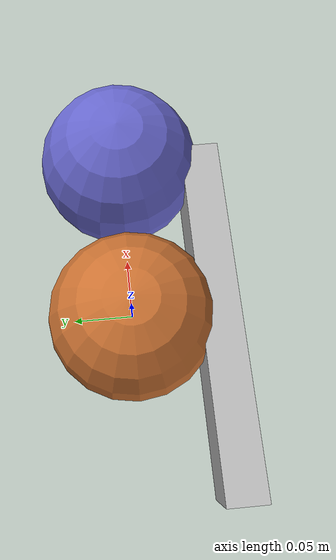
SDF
<?xml version='1.0'?>
<sdf version='1.6'>
  <model name='bubble_gripper'>
    <!-- Pose X_WG of the gripper model frame G in the world frame W. -->
    <pose>0.0555 0 0.0505 0 0 0.</pose> <!-- set the last to 1.57 to match simple gripper -->

    <joint name='weld_base' type='fixed'>
      <parent>world</parent>
      <child>y_translate_link</child>
      <pose>0 0 0 0 0 0</pose>
    </joint>

    <link name='y_translate_link'>
      <pose frame=''>0 0 0 0 -0 0</pose>
      <inertial>
        <mass>0.000001</mass>
        <inertia>
          <ixx>0.000001</ixx>
          <ixy>0</ixy>
          <ixz>0</ixz>
          <iyy>0.000001</iyy>
          <iyz>0</iyz>
          <izz>0.000001</izz>
        </inertia>
        <pose frame=''>0 0 0 0 -0 0</pose>
      </inertial>
    </link>

    <joint name='z_translate_joint' type='prismatic'>
      <parent>y_translate_link</parent>
      <child>body</child>
      <pose frame=''>0 0 0 0 -0 0</pose>
      <axis>
        <xyz>0 0 1</xyz>
        <use_parent_model_frame>1</use_parent_model_frame>
        <!-- Drake attaches an actuator to all joints with a non-zero effort
             limit. We do want an actuator for this joint. -->
        <limit>
          <effort>500</effort>
        </limit>
      </axis>
    </joint>

    <link name='body'>
      <pose frame=''>-0.07 -0.065 0 0 -0 0</pose>
      <inertial>
        <mass>0.001</mass>
        <inertia>
          <ixx>0.00001</ixx>
          <ixy>0</ixy>
          <ixz>0</ixz>
          <iyy>0.00001</iyy>
          <iyz>0</iyz>
          <izz>0.00001</izz>
        </inertia>
        <pose frame=''>0 0 0 0 -0 0</pose>
      </inertial>
      <visual name='visual'>
        <pose frame=''>0 0 0 0 -0 0</pose>
        <geometry>
          <box>
            <size>0.27 0.03 0.049521</size>
          </box>
        </geometry>
      </visual>
    </link>

    <link name='left_bubble'>
      <pose frame=''>-0.065 0.000 0 0 -0 0</pose>
      <inertial>
        <mass>0.1</mass>
        <inertia>
          <ixx>0.000281667</ixx>
          <ixy>0</ixy>
          <ixz>0</ixz>
          <iyy>0.000281667</iyy>
          <iyz>0</iyz>
          <izz>0.000281667</izz>
        </inertia>
        <pose frame=''>0 0 0 0 -0 0</pose>
      </inertial>
      <visual name='visual'>
        <pose frame=''>0 0 0 0 -0 0</pose>
        <geometry>
          <sphere>
          <radius>0.065</radius>
          </sphere>
        </geometry>
              <material name="orange">
        <ambient> 0.8 0.45 0.2 1</ambient>
        <diffuse> 0.8 0.45 0.2 1</diffuse>
      </material>
      </visual>
    </link>
    <link name='right_bubble'>
      <pose frame=''>0.065 0.000 0 0 0 0</pose>
      <inertial>
        <mass>0.1</mass>
        <inertia>
          <ixx>0.000281667</ixx>
          <ixy>0</ixy>
          <ixz>0</ixz>
          <iyy>0.000281667</iyy>
          <iyz>0</iyz>
          <izz>0.000281667</izz>
        </inertia>
        <pose frame=''>0 0 0 0 -0 0</pose>
      </inertial>
      <visual name='visual'>
        <pose frame=''>0 0 0 0 -0 0</pose>
        <geometry>
          <sphere>
          <radius>0.065</radius>
          </sphere>
        </geometry>
        <material name="blue">
        <ambient> 0.4 0.4 0.8 1</ambient>
        <diffuse> 0.4 0.4 0.8 1</diffuse>
      </material>
      </visual>
    </link>

    <joint name='weld_right_bubble' type='fixed'>
      <parent>body</parent>
      <child>right_bubble</child>
      <pose>0 0 0 0 0 0</pose>
    </joint>

    <joint name='bubble_sliding_joint' type='prismatic'>
      <parent>right_bubble</parent>
      <child>left_bubble</child>
      <pose frame=''>0 0 0 0 -0 0</pose>
      <axis>
        <xyz>1 0 0</xyz>
        <use_parent_model_frame>0</use_parent_model_frame>
        <!-- Drake attaches an actuator to all joints with a non-zero effort
             limit. We do want an actuator for this joint. -->
        <limit>
          <effort>500</effort>
        </limit>
      </axis>
    </joint>
  </model>
</sdf>
